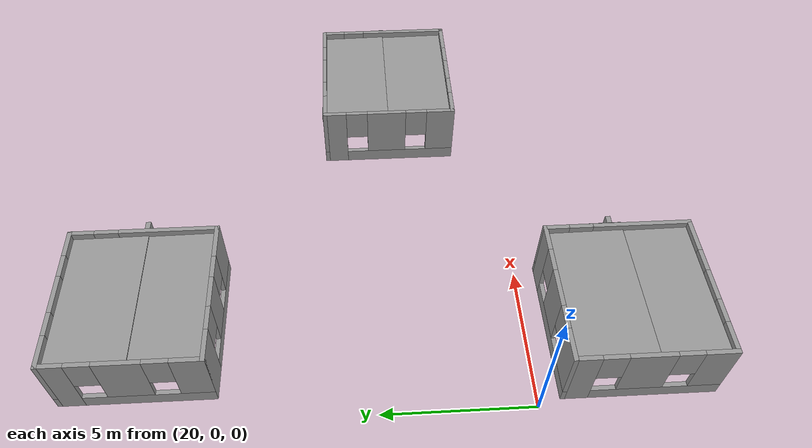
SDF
<sdf version="1.7">
 <world name="default">
  <model name="ground_plane">
   <static>1</static>
   <link name="link">
    <collision name="collision">
     <geometry><plane><normal>0 0 1</normal><size>5000 5000</size></plane></geometry>
     <surface><friction><ode><mu>100</mu><mu2>50</mu2></ode></friction></surface>
    </collision>
   </link>
  </model>
  <model name="5m">
   <pose>22.9189 -0.931863 2.17512 1.55349 -0 0</pose>
   <link name="Wall_0">
    <collision name="Wall_0_Collision">
     <geometry><box><size>5 0.15 2.5</size></box></geometry>
     <pose>0 0 1.25 0 -0 0</pose>
    </collision>
    <visual name="Wall_0_Visual">
     <pose>0 0 1.25 0 -0 0</pose>
     <geometry><box><size>5 0.15 2.5</size></box></geometry>
     <material>
      <script><uri>file://media/materials/scripts/gazebo.material</uri><name>Gazebo/Grey</name></script>
      <ambient>1 1 1 1</ambient>
     </material>
     <meta><layer>0</layer></meta>
    </visual>
   </link>
   <static>1</static>
  </model>
  <model name="House_0">
   <pose>23.3033 12.5521 0 0 -0 0</pose>
   <link name="Door_0">
    <collision name="Door_0_Collision">
     <geometry><box><size>0.9 0.17 2</size></box></geometry>
     <pose>0 0 1 0 -0 0</pose>
    </collision>
    <visual name="Door_0_Visual">
     <pose>0 0 1 0 -0 0</pose>
     <geometry><box><size>0.9 0.17 2</size></box></geometry>
     <material>
      <script><uri>file://media/materials/scripts/gazebo.material</uri><name>Gazebo/Grey</name></script>
     </material>
    </visual>
    <pose>2.72267 0.051323 0 0 -0 0</pose>
   </link>
   <link name="Wall_2">
    <pose>0 2.425 0 0 -0 3.14159</pose>
    <visual name="Wall_2_Visual_0">
     <pose>-2.01333 0 1.25 0 -0 0</pose>
     <geometry><box><size>0.973339 0.15 2.5</size></box></geometry>
     <material>
      <script><uri>file://media/materials/scripts/gazebo.material</uri><name>Gazebo/Grey</name></script>
      <ambient>1 1 1 1</ambient>
     </material>
     <meta><layer>0</layer></meta>
    </visual>
    <collision name="Wall_2_Collision_0">
     <geometry><box><size>0.973339 0.15 2.5</size></box></geometry>
     <pose>-2.01333 0 1.25 0 -0 0</pose>
    </collision>
    <visual name="Wall_2_Visual_1">
     <pose>0.48667 0 0.25 0 -0 0</pose>
     <geometry><box><size>4.02666 0.15 0.5</size></box></geometry>
     <material>
      <script><uri>file://media/materials/scripts/gazebo.material</uri><name>Gazebo/Grey</name></script>
      <ambient>1 1 1 1</ambient>
     </material>
     <meta><layer>0</layer></meta>
    </visual>
    <collision name="Wall_2_Collision_1">
     <geometry><box><size>4.02666 0.15 0.5</size></box></geometry>
     <pose>0.48667 0 0.25 0 -0 0</pose>
    </collision>
    <visual name="Wall_2_Visual_2">
     <pose>-0.062653 0 1.5 0 -0 0</pose>
     <geometry><box><size>1.32802 0.15 2</size></box></geometry>
     <material>
      <script><uri>file://media/materials/scripts/gazebo.material</uri><name>Gazebo/Grey</name></script>
      <ambient>1 1 1 1</ambient>
     </material>
     <meta><layer>0</layer></meta>
    </visual>
    <collision name="Wall_2_Collision_2">
     <geometry><box><size>1.32802 0.15 2</size></box></geometry>
     <pose>-0.062653 0 1.5 0 -0 0</pose>
    </collision>
    <visual name="Wall_2_Visual_3">
     <pose>1.95068 0 1.5 0 -0 0</pose>
     <geometry><box><size>1.09865 0.15 2</size></box></geometry>
     <material>
      <script><uri>file://media/materials/scripts/gazebo.material</uri><name>Gazebo/Grey</name></script>
      <ambient>1 1 1 1</ambient>
     </material>
     <meta><layer>0</layer></meta>
    </visual>
    <collision name="Wall_2_Collision_3">
     <geometry><box><size>1.09865 0.15 2</size></box></geometry>
     <pose>1.95068 0 1.5 0 -0 0</pose>
    </collision>
    <visual name="Wall_2_Visual_4">
     <pose>-1.12666 0 1.9 0 -0 0</pose>
     <geometry><box><size>0.8 0.15 1.2</size></box></geometry>
     <material>
      <script><uri>file://media/materials/scripts/gazebo.material</uri><name>Gazebo/Grey</name></script>
      <ambient>1 1 1 1</ambient>
     </material>
     <meta><layer>0</layer></meta>
    </visual>
    <collision name="Wall_2_Collision_4">
     <geometry><box><size>0.8 0.15 1.2</size></box></geometry>
     <pose>-1.12666 0 1.9 0 -0 0</pose>
    </collision>
    <visual name="Wall_2_Visual_5">
     <pose>1.00135 0 1.9 0 -0 0</pose>
     <geometry><box><size>0.8 0.15 1.2</size></box></geometry>
     <material>
      <script><uri>file://media/materials/scripts/gazebo.material</uri><name>Gazebo/Grey</name></script>
      <ambient>1 1 1 1</ambient>
     </material>
     <meta><layer>0</layer></meta>
    </visual>
    <collision name="Wall_2_Collision_5">
     <geometry><box><size>0.8 0.15 1.2</size></box></geometry>
     <pose>1.00135 0 1.9 0 -0 0</pose>
    </collision>
   </link>
   <link name="Wall_3">
    <pose>-2.425 0 0 0 -0 -1.5708</pose>
    <visual name="Wall_3_Visual_0">
     <pose>-2.06087 0 1.25 0 -0 0</pose>
     <geometry><box><size>0.878268 0.15 2.5</size></box></geometry>
     <material>
      <script><uri>file://media/materials/scripts/gazebo.material</uri><name>Gazebo/Grey</name></script>
      <ambient>1 1 1 1</ambient>
     </material>
     <meta><layer>0</layer></meta>
    </visual>
    <collision name="Wall_3_Collision_0">
     <geometry><box><size>0.878268 0.15 2.5</size></box></geometry>
     <pose>-2.06087 0 1.25 0 -0 0</pose>
    </collision>
    <visual name="Wall_3_Visual_1">
     <pose>0.439134 0 0.25 0 -0 0</pose>
     <geometry><box><size>4.12173 0.15 0.5</size></box></geometry>
     <material>
      <script><uri>file://media/materials/scripts/gazebo.material</uri><name>Gazebo/Grey</name></script>
      <ambient>1 1 1 1</ambient>
     </material>
     <meta><layer>0</layer></meta>
    </visual>
    <collision name="Wall_3_Collision_1">
     <geometry><box><size>4.12173 0.15 0.5</size></box></geometry>
     <pose>0.439134 0 0.25 0 -0 0</pose>
    </collision>
    <visual name="Wall_3_Visual_2">
     <pose>-0.091224 0 1.5 0 -0 0</pose>
     <geometry><box><size>1.46102 0.15 2</size></box></geometry>
     <material>
      <script><uri>file://media/materials/scripts/gazebo.material</uri><name>Gazebo/Grey</name></script>
      <ambient>1 1 1 1</ambient>
     </material>
     <meta><layer>0</layer></meta>
    </visual>
    <collision name="Wall_3_Collision_2">
     <geometry><box><size>1.46102 0.15 2</size></box></geometry>
     <pose>-0.091224 0 1.5 0 -0 0</pose>
    </collision>
    <visual name="Wall_3_Visual_3">
     <pose>1.96964 0 1.5 0 -0 0</pose>
     <geometry><box><size>1.06072 0.15 2</size></box></geometry>
     <material>
      <script><uri>file://media/materials/scripts/gazebo.material</uri><name>Gazebo/Grey</name></script>
      <ambient>1 1 1 1</ambient>
     </material>
     <meta><layer>0</layer></meta>
    </visual>
    <collision name="Wall_3_Collision_3">
     <geometry><box><size>1.06072 0.15 2</size></box></geometry>
     <pose>1.96964 0 1.5 0 -0 0</pose>
    </collision>
    <visual name="Wall_3_Visual_4">
     <pose>-1.22173 0 1.9 0 -0 0</pose>
     <geometry><box><size>0.8 0.15 1.2</size></box></geometry>
     <material>
      <script><uri>file://media/materials/scripts/gazebo.material</uri><name>Gazebo/Grey</name></script>
      <ambient>1 1 1 1</ambient>
     </material>
     <meta><layer>0</layer></meta>
    </visual>
    <collision name="Wall_3_Collision_4">
     <geometry><box><size>0.8 0.15 1.2</size></box></geometry>
     <pose>-1.22173 0 1.9 0 -0 0</pose>
    </collision>
    <visual name="Wall_3_Visual_5">
     <pose>1.03929 0 1.9 0 -0 0</pose>
     <geometry><box><size>0.8 0.15 1.2</size></box></geometry>
     <material>
      <script><uri>file://media/materials/scripts/gazebo.material</uri><name>Gazebo/Grey</name></script>
      <ambient>1 1 1 1</ambient>
     </material>
     <meta><layer>0</layer></meta>
    </visual>
    <collision name="Wall_3_Collision_5">
     <geometry><box><size>0.8 0.15 1.2</size></box></geometry>
     <pose>1.03929 0 1.9 0 -0 0</pose>
    </collision>
   </link>
   <link name="Wall_4">
    <pose>0 -2.425 0 0 -0 0</pose>
    <visual name="Wall_4_Visual_0">
     <pose>-1.96398 0 1.25 0 -0 0</pose>
     <geometry><box><size>1.07204 0.15 2.5</size></box></geometry>
     <material>
      <script><uri>file://media/materials/scripts/gazebo.material</uri><name>Gazebo/Grey</name></script>
      <ambient>1 1 1 1</ambient>
     </material>
     <meta><layer>0</layer></meta>
    </visual>
    <collision name="Wall_4_Collision_0">
     <geometry><box><size>1.07204 0.15 2.5</size></box></geometry>
     <pose>-1.96398 0 1.25 0 -0 0</pose>
    </collision>
    <visual name="Wall_4_Visual_1">
     <pose>0.536022 0 0.25 0 -0 0</pose>
     <geometry><box><size>3.92796 0.15 0.5</size></box></geometry>
     <material>
      <script><uri>file://media/materials/scripts/gazebo.material</uri><name>Gazebo/Grey</name></script>
      <ambient>1 1 1 1</ambient>
     </material>
     <meta><layer>0</layer></meta>
    </visual>
    <collision name="Wall_4_Collision_1">
     <geometry><box><size>3.92796 0.15 0.5</size></box></geometry>
     <pose>0.536022 0 0.25 0 -0 0</pose>
    </collision>
    <visual name="Wall_4_Visual_2">
     <pose>-0.083648 0 1.5 0 -0 0</pose>
     <geometry><box><size>1.08861 0.15 2</size></box></geometry>
     <material>
      <script><uri>file://media/materials/scripts/gazebo.material</uri><name>Gazebo/Grey</name></script>
      <ambient>1 1 1 1</ambient>
     </material>
     <meta><layer>0</layer></meta>
    </visual>
    <collision name="Wall_4_Collision_2">
     <geometry><box><size>1.08861 0.15 2</size></box></geometry>
     <pose>-0.083648 0 1.5 0 -0 0</pose>
    </collision>
    <visual name="Wall_4_Visual_3">
     <pose>1.88033 0 1.5 0 -0 0</pose>
     <geometry><box><size>1.23934 0.15 2</size></box></geometry>
     <material>
      <script><uri>file://media/materials/scripts/gazebo.material</uri><name>Gazebo/Grey</name></script>
      <ambient>1 1 1 1</ambient>
     </material>
     <meta><layer>0</layer></meta>
    </visual>
    <collision name="Wall_4_Collision_3">
     <geometry><box><size>1.23934 0.15 2</size></box></geometry>
     <pose>1.88033 0 1.5 0 -0 0</pose>
    </collision>
    <visual name="Wall_4_Visual_4">
     <pose>-1.02796 0 1.9 0 -0 0</pose>
     <geometry><box><size>0.8 0.15 1.2</size></box></geometry>
     <material>
      <script><uri>file://media/materials/scripts/gazebo.material</uri><name>Gazebo/Grey</name></script>
      <ambient>1 1 1 1</ambient>
     </material>
     <meta><layer>0</layer></meta>
    </visual>
    <collision name="Wall_4_Collision_4">
     <geometry><box><size>0.8 0.15 1.2</size></box></geometry>
     <pose>-1.02796 0 1.9 0 -0 0</pose>
    </collision>
    <visual name="Wall_4_Visual_5">
     <pose>0.860659 0 1.9 0 -0 0</pose>
     <geometry><box><size>0.8 0.15 1.2</size></box></geometry>
     <material>
      <script><uri>file://media/materials/scripts/gazebo.material</uri><name>Gazebo/Grey</name></script>
      <ambient>1 1 1 1</ambient>
     </material>
     <meta><layer>0</layer></meta>
    </visual>
    <collision name="Wall_4_Collision_5">
     <geometry><box><size>0.8 0.15 1.2</size></box></geometry>
     <pose>0.860659 0 1.9 0 -0 0</pose>
    </collision>
   </link>
   <link name="Wall_5">
    <pose>2.425 0 0 0 -0 1.5708</pose>
    <visual name="Wall_5_Visual_0">
     <pose>-0.839134 0 1.25 0 -0 0</pose>
     <geometry><box><size>3.32173 0.15 2.5</size></box></geometry>
     <material>
      <script><uri>file://media/materials/scripts/gazebo.material</uri><name>Gazebo/Grey</name></script>
      <ambient>1 1 1 1</ambient>
     </material>
     <meta><layer>0</layer></meta>
    </visual>
    <collision name="Wall_5_Collision_0">
     <geometry><box><size>3.32173 0.15 2.5</size></box></geometry>
     <pose>-0.839134 0 1.25 0 -0 0</pose>
    </collision>
    <visual name="Wall_5_Visual_1">
     <pose>1.66087 0 0.25 0 -0 0</pose>
     <geometry><box><size>1.67827 0.15 0.5</size></box></geometry>
     <material>
      <script><uri>file://media/materials/scripts/gazebo.material</uri><name>Gazebo/Grey</name></script>
      <ambient>1 1 1 1</ambient>
     </material>
     <meta><layer>0</layer></meta>
    </visual>
    <collision name="Wall_5_Collision_1">
     <geometry><box><size>1.67827 0.15 0.5</size></box></geometry>
     <pose>1.66087 0 0.25 0 -0 0</pose>
    </collision>
    <visual name="Wall_5_Visual_2">
     <pose>2.06087 0 1.5 0 -0 0</pose>
     <geometry><box><size>0.878268 0.15 2</size></box></geometry>
     <material>
      <script><uri>file://media/materials/scripts/gazebo.material</uri><name>Gazebo/Grey</name></script>
      <ambient>1 1 1 1</ambient>
     </material>
     <meta><layer>0</layer></meta>
    </visual>
    <collision name="Wall_5_Collision_2">
     <geometry><box><size>0.878268 0.15 2</size></box></geometry>
     <pose>2.06087 0 1.5 0 -0 0</pose>
    </collision>
    <visual name="Wall_5_Visual_3">
     <pose>1.22173 0 1.9 0 -0 0</pose>
     <geometry><box><size>0.8 0.15 1.2</size></box></geometry>
     <material>
      <script><uri>file://media/materials/scripts/gazebo.material</uri><name>Gazebo/Grey</name></script>
      <ambient>1 1 1 1</ambient>
     </material>
     <meta><layer>0</layer></meta>
    </visual>
    <collision name="Wall_5_Collision_3">
     <geometry><box><size>0.8 0.15 1.2</size></box></geometry>
     <pose>1.22173 0 1.9 0 -0 0</pose>
    </collision>
   </link>
   <static>1</static>
  </model>
  <model name="House_2">
   <pose>22.7443 -3.22625 0 0 -0 0</pose>
   <link name="Door_0">
    <collision name="Door_0_Collision">
     <geometry><box><size>0.9 0.17 2</size></box></geometry>
     <pose>0 0 1 0 -0 0</pose>
    </collision>
    <visual name="Door_0_Visual">
     <pose>0 0 1 0 -0 0</pose>
     <geometry><box><size>0.9 0.17 2</size></box></geometry>
     <material>
      <script><uri>file://media/materials/scripts/gazebo.material</uri><name>Gazebo/Grey</name></script>
     </material>
    </visual>
    <pose>2.72267 0.051323 0 0 -0 0</pose>
   </link>
   <link name="Wall_2">
    <pose>0 2.425 0 0 -0 3.14159</pose>
    <visual name="Wall_2_Visual_0">
     <pose>-2.01333 0 1.25 0 -0 0</pose>
     <geometry><box><size>0.973339 0.15 2.5</size></box></geometry>
     <material>
      <script><uri>file://media/materials/scripts/gazebo.material</uri><name>Gazebo/Grey</name></script>
      <ambient>1 1 1 1</ambient>
     </material>
     <meta><layer>0</layer></meta>
    </visual>
    <collision name="Wall_2_Collision_0">
     <geometry><box><size>0.973339 0.15 2.5</size></box></geometry>
     <pose>-2.01333 0 1.25 0 -0 0</pose>
    </collision>
    <visual name="Wall_2_Visual_1">
     <pose>0.48667 0 0.25 0 -0 0</pose>
     <geometry><box><size>4.02666 0.15 0.5</size></box></geometry>
     <material>
      <script><uri>file://media/materials/scripts/gazebo.material</uri><name>Gazebo/Grey</name></script>
      <ambient>1 1 1 1</ambient>
     </material>
     <meta><layer>0</layer></meta>
    </visual>
    <collision name="Wall_2_Collision_1">
     <geometry><box><size>4.02666 0.15 0.5</size></box></geometry>
     <pose>0.48667 0 0.25 0 -0 0</pose>
    </collision>
    <visual name="Wall_2_Visual_2">
     <pose>-0.062653 0 1.5 0 -0 0</pose>
     <geometry><box><size>1.32802 0.15 2</size></box></geometry>
     <material>
      <script><uri>file://media/materials/scripts/gazebo.material</uri><name>Gazebo/Grey</name></script>
      <ambient>1 1 1 1</ambient>
     </material>
     <meta><layer>0</layer></meta>
    </visual>
    <collision name="Wall_2_Collision_2">
     <geometry><box><size>1.32802 0.15 2</size></box></geometry>
     <pose>-0.062653 0 1.5 0 -0 0</pose>
    </collision>
    <visual name="Wall_2_Visual_3">
     <pose>1.95068 0 1.5 0 -0 0</pose>
     <geometry><box><size>1.09865 0.15 2</size></box></geometry>
     <material>
      <script><uri>file://media/materials/scripts/gazebo.material</uri><name>Gazebo/Grey</name></script>
      <ambient>1 1 1 1</ambient>
     </material>
     <meta><layer>0</layer></meta>
    </visual>
    <collision name="Wall_2_Collision_3">
     <geometry><box><size>1.09865 0.15 2</size></box></geometry>
     <pose>1.95068 0 1.5 0 -0 0</pose>
    </collision>
    <visual name="Wall_2_Visual_4">
     <pose>-1.12666 0 1.9 0 -0 0</pose>
     <geometry><box><size>0.8 0.15 1.2</size></box></geometry>
     <material>
      <script><uri>file://media/materials/scripts/gazebo.material</uri><name>Gazebo/Grey</name></script>
      <ambient>1 1 1 1</ambient>
     </material>
     <meta><layer>0</layer></meta>
    </visual>
    <collision name="Wall_2_Collision_4">
     <geometry><box><size>0.8 0.15 1.2</size></box></geometry>
     <pose>-1.12666 0 1.9 0 -0 0</pose>
    </collision>
    <visual name="Wall_2_Visual_5">
     <pose>1.00135 0 1.9 0 -0 0</pose>
     <geometry><box><size>0.8 0.15 1.2</size></box></geometry>
     <material>
      <script><uri>file://media/materials/scripts/gazebo.material</uri><name>Gazebo/Grey</name></script>
      <ambient>1 1 1 1</ambient>
     </material>
     <meta><layer>0</layer></meta>
    </visual>
    <collision name="Wall_2_Collision_5">
     <geometry><box><size>0.8 0.15 1.2</size></box></geometry>
     <pose>1.00135 0 1.9 0 -0 0</pose>
    </collision>
   </link>
   <link name="Wall_3">
    <pose>-2.425 0 0 0 -0 -1.5708</pose>
    <visual name="Wall_3_Visual_0">
     <pose>-2.06087 0 1.25 0 -0 0</pose>
     <geometry><box><size>0.878268 0.15 2.5</size></box></geometry>
     <material>
      <script><uri>file://media/materials/scripts/gazebo.material</uri><name>Gazebo/Grey</name></script>
      <ambient>1 1 1 1</ambient>
     </material>
     <meta><layer>0</layer></meta>
    </visual>
    <collision name="Wall_3_Collision_0">
     <geometry><box><size>0.878268 0.15 2.5</size></box></geometry>
     <pose>-2.06087 0 1.25 0 -0 0</pose>
    </collision>
    <visual name="Wall_3_Visual_1">
     <pose>0.439134 0 0.25 0 -0 0</pose>
     <geometry><box><size>4.12173 0.15 0.5</size></box></geometry>
     <material>
      <script><uri>file://media/materials/scripts/gazebo.material</uri><name>Gazebo/Grey</name></script>
      <ambient>1 1 1 1</ambient>
     </material>
     <meta><layer>0</layer></meta>
    </visual>
    <collision name="Wall_3_Collision_1">
     <geometry><box><size>4.12173 0.15 0.5</size></box></geometry>
     <pose>0.439134 0 0.25 0 -0 0</pose>
    </collision>
    <visual name="Wall_3_Visual_2">
     <pose>-0.091224 0 1.5 0 -0 0</pose>
     <geometry><box><size>1.46102 0.15 2</size></box></geometry>
     <material>
      <script><uri>file://media/materials/scripts/gazebo.material</uri><name>Gazebo/Grey</name></script>
      <ambient>1 1 1 1</ambient>
     </material>
     <meta><layer>0</layer></meta>
    </visual>
    <collision name="Wall_3_Collision_2">
     <geometry><box><size>1.46102 0.15 2</size></box></geometry>
     <pose>-0.091224 0 1.5 0 -0 0</pose>
    </collision>
    <visual name="Wall_3_Visual_3">
     <pose>1.96964 0 1.5 0 -0 0</pose>
     <geometry><box><size>1.06072 0.15 2</size></box></geometry>
     <material>
      <script><uri>file://media/materials/scripts/gazebo.material</uri><name>Gazebo/Grey</name></script>
      <ambient>1 1 1 1</ambient>
     </material>
     <meta><layer>0</layer></meta>
    </visual>
    <collision name="Wall_3_Collision_3">
     <geometry><box><size>1.06072 0.15 2</size></box></geometry>
     <pose>1.96964 0 1.5 0 -0 0</pose>
    </collision>
    <visual name="Wall_3_Visual_4">
     <pose>-1.22173 0 1.9 0 -0 0</pose>
     <geometry><box><size>0.8 0.15 1.2</size></box></geometry>
     <material>
      <script><uri>file://media/materials/scripts/gazebo.material</uri><name>Gazebo/Grey</name></script>
      <ambient>1 1 1 1</ambient>
     </material>
     <meta><layer>0</layer></meta>
    </visual>
    <collision name="Wall_3_Collision_4">
     <geometry><box><size>0.8 0.15 1.2</size></box></geometry>
     <pose>-1.22173 0 1.9 0 -0 0</pose>
    </collision>
    <visual name="Wall_3_Visual_5">
     <pose>1.03929 0 1.9 0 -0 0</pose>
     <geometry><box><size>0.8 0.15 1.2</size></box></geometry>
     <material>
      <script><uri>file://media/materials/scripts/gazebo.material</uri><name>Gazebo/Grey</name></script>
      <ambient>1 1 1 1</ambient>
     </material>
     <meta><layer>0</layer></meta>
    </visual>
    <collision name="Wall_3_Collision_5">
     <geometry><box><size>0.8 0.15 1.2</size></box></geometry>
     <pose>1.03929 0 1.9 0 -0 0</pose>
    </collision>
   </link>
   <link name="Wall_4">
    <pose>0 -2.425 0 0 -0 0</pose>
    <visual name="Wall_4_Visual_0">
     <pose>-1.96398 0 1.25 0 -0 0</pose>
     <geometry><box><size>1.07204 0.15 2.5</size></box></geometry>
     <material>
      <script><uri>file://media/materials/scripts/gazebo.material</uri><name>Gazebo/Grey</name></script>
      <ambient>1 1 1 1</ambient>
     </material>
     <meta><layer>0</layer></meta>
    </visual>
    <collision name="Wall_4_Collision_0">
     <geometry><box><size>1.07204 0.15 2.5</size></box></geometry>
     <pose>-1.96398 0 1.25 0 -0 0</pose>
    </collision>
    <visual name="Wall_4_Visual_1">
     <pose>0.536022 0 0.25 0 -0 0</pose>
     <geometry><box><size>3.92796 0.15 0.5</size></box></geometry>
     <material>
      <script><uri>file://media/materials/scripts/gazebo.material</uri><name>Gazebo/Grey</name></script>
      <ambient>1 1 1 1</ambient>
     </material>
     <meta><layer>0</layer></meta>
    </visual>
    <collision name="Wall_4_Collision_1">
     <geometry><box><size>3.92796 0.15 0.5</size></box></geometry>
     <pose>0.536022 0 0.25 0 -0 0</pose>
    </collision>
    <visual name="Wall_4_Visual_2">
     <pose>-0.083648 0 1.5 0 -0 0</pose>
     <geometry><box><size>1.08861 0.15 2</size></box></geometry>
     <material>
      <script><uri>file://media/materials/scripts/gazebo.material</uri><name>Gazebo/Grey</name></script>
      <ambient>1 1 1 1</ambient>
     </material>
     <meta><layer>0</layer></meta>
    </visual>
    <collision name="Wall_4_Collision_2">
     <geometry><box><size>1.08861 0.15 2</size></box></geometry>
     <pose>-0.083648 0 1.5 0 -0 0</pose>
    </collision>
    <visual name="Wall_4_Visual_3">
     <pose>1.88033 0 1.5 0 -0 0</pose>
     <geometry><box><size>1.23934 0.15 2</size></box></geometry>
     <material>
      <script><uri>file://media/materials/scripts/gazebo.material</uri><name>Gazebo/Grey</name></script>
      <ambient>1 1 1 1</ambient>
     </material>
     <meta><layer>0</layer></meta>
    </visual>
    <collision name="Wall_4_Collision_3">
     <geometry><box><size>1.23934 0.15 2</size></box></geometry>
     <pose>1.88033 0 1.5 0 -0 0</pose>
    </collision>
    <visual name="Wall_4_Visual_4">
     <pose>-1.02796 0 1.9 0 -0 0</pose>
     <geometry><box><size>0.8 0.15 1.2</size></box></geometry>
     <material>
      <script><uri>file://media/materials/scripts/gazebo.material</uri><name>Gazebo/Grey</name></script>
      <ambient>1 1 1 1</ambient>
     </material>
     <meta><layer>0</layer></meta>
    </visual>
    <collision name="Wall_4_Collision_4">
     <geometry><box><size>0.8 0.15 1.2</size></box></geometry>
     <pose>-1.02796 0 1.9 0 -0 0</pose>
    </collision>
    <visual name="Wall_4_Visual_5">
     <pose>0.860659 0 1.9 0 -0 0</pose>
     <geometry><box><size>0.8 0.15 1.2</size></box></geometry>
     <material>
      <script><uri>file://media/materials/scripts/gazebo.material</uri><name>Gazebo/Grey</name></script>
      <ambient>1 1 1 1</ambient>
     </material>
     <meta><layer>0</layer></meta>
    </visual>
    <collision name="Wall_4_Collision_5">
     <geometry><box><size>0.8 0.15 1.2</size></box></geometry>
     <pose>0.860659 0 1.9 0 -0 0</pose>
    </collision>
   </link>
   <link name="Wall_5">
    <pose>2.425 0 0 0 -0 1.5708</pose>
    <visual name="Wall_5_Visual_0">
     <pose>-0.839134 0 1.25 0 -0 0</pose>
     <geometry><box><size>3.32173 0.15 2.5</size></box></geometry>
     <material>
      <script><uri>file://media/materials/scripts/gazebo.material</uri><name>Gazebo/Grey</name></script>
      <ambient>1 1 1 1</ambient>
     </material>
     <meta><layer>0</layer></meta>
    </visual>
    <collision name="Wall_5_Collision_0">
     <geometry><box><size>3.32173 0.15 2.5</size></box></geometry>
     <pose>-0.839134 0 1.25 0 -0 0</pose>
    </collision>
    <visual name="Wall_5_Visual_1">
     <pose>1.66087 0 0.25 0 -0 0</pose>
     <geometry><box><size>1.67827 0.15 0.5</size></box></geometry>
     <material>
      <script><uri>file://media/materials/scripts/gazebo.material</uri><name>Gazebo/Grey</name></script>
      <ambient>1 1 1 1</ambient>
     </material>
     <meta><layer>0</layer></meta>
    </visual>
    <collision name="Wall_5_Collision_1">
     <geometry><box><size>1.67827 0.15 0.5</size></box></geometry>
     <pose>1.66087 0 0.25 0 -0 0</pose>
    </collision>
    <visual name="Wall_5_Visual_2">
     <pose>2.06087 0 1.5 0 -0 0</pose>
     <geometry><box><size>0.878268 0.15 2</size></box></geometry>
     <material>
      <script><uri>file://media/materials/scripts/gazebo.material</uri><name>Gazebo/Grey</name></script>
      <ambient>1 1 1 1</ambient>
     </material>
     <meta><layer>0</layer></meta>
    </visual>
    <collision name="Wall_5_Collision_2">
     <geometry><box><size>0.878268 0.15 2</size></box></geometry>
     <pose>2.06087 0 1.5 0 -0 0</pose>
    </collision>
    <visual name="Wall_5_Visual_3">
     <pose>1.22173 0 1.9 0 -0 0</pose>
     <geometry><box><size>0.8 0.15 1.2</size></box></geometry>
     <material>
      <script><uri>file://media/materials/scripts/gazebo.material</uri><name>Gazebo/Grey</name></script>
      <ambient>1 1 1 1</ambient>
     </material>
     <meta><layer>0</layer></meta>
    </visual>
    <collision name="Wall_5_Collision_3">
     <geometry><box><size>0.8 0.15 1.2</size></box></geometry>
     <pose>1.22173 0 1.9 0 -0 0</pose>
    </collision>
   </link>
   <static>1</static>
  </model>
  <model name="House_3">
   <pose>33.3699 4.11551 0 0 -0 0</pose>
   <link name="Door_0">
    <collision name="Door_0_Collision">
     <geometry><box><size>0.9 0.17 2</size></box></geometry>
     <pose>0 0 1 0 -0 0</pose>
    </collision>
    <visual name="Door_0_Visual">
     <pose>0 0 1 0 -0 0</pose>
     <geometry><box><size>0.9 0.17 2</size></box></geometry>
     <material>
      <script><uri>file://media/materials/scripts/gazebo.material</uri><name>Gazebo/Grey</name></script>
     </material>
    </visual>
    <pose>2.72267 0.051323 0 0 -0 0</pose>
   </link>
   <link name="Wall_2">
    <pose>0 2.425 0 0 -0 3.14159</pose>
    <visual name="Wall_2_Visual_0">
     <pose>-2.01333 0 1.25 0 -0 0</pose>
     <geometry><box><size>0.973339 0.15 2.5</size></box></geometry>
     <material>
      <script><uri>file://media/materials/scripts/gazebo.material</uri><name>Gazebo/Grey</name></script>
      <ambient>1 1 1 1</ambient>
     </material>
     <meta><layer>0</layer></meta>
    </visual>
    <collision name="Wall_2_Collision_0">
     <geometry><box><size>0.973339 0.15 2.5</size></box></geometry>
     <pose>-2.01333 0 1.25 0 -0 0</pose>
    </collision>
    <visual name="Wall_2_Visual_1">
     <pose>0.48667 0 0.25 0 -0 0</pose>
     <geometry><box><size>4.02666 0.15 0.5</size></box></geometry>
     <material>
      <script><uri>file://media/materials/scripts/gazebo.material</uri><name>Gazebo/Grey</name></script>
      <ambient>1 1 1 1</ambient>
     </material>
     <meta><layer>0</layer></meta>
    </visual>
    <collision name="Wall_2_Collision_1">
     <geometry><box><size>4.02666 0.15 0.5</size></box></geometry>
     <pose>0.48667 0 0.25 0 -0 0</pose>
    </collision>
    <visual name="Wall_2_Visual_2">
     <pose>-0.062653 0 1.5 0 -0 0</pose>
     <geometry><box><size>1.32802 0.15 2</size></box></geometry>
     <material>
      <script><uri>file://media/materials/scripts/gazebo.material</uri><name>Gazebo/Grey</name></script>
      <ambient>1 1 1 1</ambient>
     </material>
     <meta><layer>0</layer></meta>
    </visual>
    <collision name="Wall_2_Collision_2">
     <geometry><box><size>1.32802 0.15 2</size></box></geometry>
     <pose>-0.062653 0 1.5 0 -0 0</pose>
    </collision>
    <visual name="Wall_2_Visual_3">
     <pose>1.95068 0 1.5 0 -0 0</pose>
     <geometry><box><size>1.09865 0.15 2</size></box></geometry>
     <material>
      <script><uri>file://media/materials/scripts/gazebo.material</uri><name>Gazebo/Grey</name></script>
      <ambient>1 1 1 1</ambient>
     </material>
     <meta><layer>0</layer></meta>
    </visual>
    <collision name="Wall_2_Collision_3">
     <geometry><box><size>1.09865 0.15 2</size></box></geometry>
     <pose>1.95068 0 1.5 0 -0 0</pose>
    </collision>
    <visual name="Wall_2_Visual_4">
     <pose>-1.12666 0 1.9 0 -0 0</pose>
     <geometry><box><size>0.8 0.15 1.2</size></box></geometry>
     <material>
      <script><uri>file://media/materials/scripts/gazebo.material</uri><name>Gazebo/Grey</name></script>
      <ambient>1 1 1 1</ambient>
     </material>
     <meta><layer>0</layer></meta>
    </visual>
    <collision name="Wall_2_Collision_4">
     <geometry><box><size>0.8 0.15 1.2</size></box></geometry>
     <pose>-1.12666 0 1.9 0 -0 0</pose>
    </collision>
    <visual name="Wall_2_Visual_5">
     <pose>1.00135 0 1.9 0 -0 0</pose>
     <geometry><box><size>0.8 0.15 1.2</size></box></geometry>
     <material>
      <script><uri>file://media/materials/scripts/gazebo.material</uri><name>Gazebo/Grey</name></script>
      <ambient>1 1 1 1</ambient>
     </material>
     <meta><layer>0</layer></meta>
    </visual>
    <collision name="Wall_2_Collision_5">
     <geometry><box><size>0.8 0.15 1.2</size></box></geometry>
     <pose>1.00135 0 1.9 0 -0 0</pose>
    </collision>
   </link>
   <link name="Wall_3">
    <pose>-2.425 0 0 0 -0 -1.5708</pose>
    <visual name="Wall_3_Visual_0">
     <pose>-2.06087 0 1.25 0 -0 0</pose>
     <geometry><box><size>0.878268 0.15 2.5</size></box></geometry>
     <material>
      <script><uri>file://media/materials/scripts/gazebo.material</uri><name>Gazebo/Grey</name></script>
      <ambient>1 1 1 1</ambient>
     </material>
     <meta><layer>0</layer></meta>
    </visual>
    <collision name="Wall_3_Collision_0">
     <geometry><box><size>0.878268 0.15 2.5</size></box></geometry>
     <pose>-2.06087 0 1.25 0 -0 0</pose>
    </collision>
    <visual name="Wall_3_Visual_1">
     <pose>0.439134 0 0.25 0 -0 0</pose>
     <geometry><box><size>4.12173 0.15 0.5</size></box></geometry>
     <material>
      <script><uri>file://media/materials/scripts/gazebo.material</uri><name>Gazebo/Grey</name></script>
      <ambient>1 1 1 1</ambient>
     </material>
     <meta><layer>0</layer></meta>
    </visual>
    <collision name="Wall_3_Collision_1">
     <geometry><box><size>4.12173 0.15 0.5</size></box></geometry>
     <pose>0.439134 0 0.25 0 -0 0</pose>
    </collision>
    <visual name="Wall_3_Visual_2">
     <pose>-0.091224 0 1.5 0 -0 0</pose>
     <geometry><box><size>1.46102 0.15 2</size></box></geometry>
     <material>
      <script><uri>file://media/materials/scripts/gazebo.material</uri><name>Gazebo/Grey</name></script>
      <ambient>1 1 1 1</ambient>
     </material>
     <meta><layer>0</layer></meta>
    </visual>
    <collision name="Wall_3_Collision_2">
     <geometry><box><size>1.46102 0.15 2</size></box></geometry>
     <pose>-0.091224 0 1.5 0 -0 0</pose>
    </collision>
    <visual name="Wall_3_Visual_3">
     <pose>1.96964 0 1.5 0 -0 0</pose>
     <geometry><box><size>1.06072 0.15 2</size></box></geometry>
     <material>
      <script><uri>file://media/materials/scripts/gazebo.material</uri><name>Gazebo/Grey</name></script>
      <ambient>1 1 1 1</ambient>
     </material>
     <meta><layer>0</layer></meta>
    </visual>
    <collision name="Wall_3_Collision_3">
     <geometry><box><size>1.06072 0.15 2</size></box></geometry>
     <pose>1.96964 0 1.5 0 -0 0</pose>
    </collision>
    <visual name="Wall_3_Visual_4">
     <pose>-1.22173 0 1.9 0 -0 0</pose>
     <geometry><box><size>0.8 0.15 1.2</size></box></geometry>
     <material>
      <script><uri>file://media/materials/scripts/gazebo.material</uri><name>Gazebo/Grey</name></script>
      <ambient>1 1 1 1</ambient>
     </material>
     <meta><layer>0</layer></meta>
    </visual>
    <collision name="Wall_3_Collision_4">
     <geometry><box><size>0.8 0.15 1.2</size></box></geometry>
     <pose>-1.22173 0 1.9 0 -0 0</pose>
    </collision>
    <visual name="Wall_3_Visual_5">
     <pose>1.03929 0 1.9 0 -0 0</pose>
     <geometry><box><size>0.8 0.15 1.2</size></box></geometry>
     <material>
      <script><uri>file://media/materials/scripts/gazebo.material</uri><name>Gazebo/Grey</name></script>
      <ambient>1 1 1 1</ambient>
     </material>
     <meta><layer>0</layer></meta>
    </visual>
    <collision name="Wall_3_Collision_5">
     <geometry><box><size>0.8 0.15 1.2</size></box></geometry>
     <pose>1.03929 0 1.9 0 -0 0</pose>
    </collision>
   </link>
   <link name="Wall_4">
    <pose>0 -2.425 0 0 -0 0</pose>
    <visual name="Wall_4_Visual_0">
     <pose>-1.96398 0 1.25 0 -0 0</pose>
     <geometry><box><size>1.07204 0.15 2.5</size></box></geometry>
     <material>
      <script><uri>file://media/materials/scripts/gazebo.material</uri><name>Gazebo/Grey</name></script>
      <ambient>1 1 1 1</ambient>
     </material>
     <meta><layer>0</layer></meta>
    </visual>
    <collision name="Wall_4_Collision_0">
     <geometry><box><size>1.07204 0.15 2.5</size></box></geometry>
     <pose>-1.96398 0 1.25 0 -0 0</pose>
    </collision>
    <visual name="Wall_4_Visual_1">
     <pose>0.536022 0 0.25 0 -0 0</pose>
     <geometry><box><size>3.92796 0.15 0.5</size></box></geometry>
     <material>
      <script><uri>file://media/materials/scripts/gazebo.material</uri><name>Gazebo/Grey</name></script>
      <ambient>1 1 1 1</ambient>
     </material>
     <meta><layer>0</layer></meta>
    </visual>
    <collision name="Wall_4_Collision_1">
     <geometry><box><size>3.92796 0.15 0.5</size></box></geometry>
     <pose>0.536022 0 0.25 0 -0 0</pose>
    </collision>
    <visual name="Wall_4_Visual_2">
     <pose>-0.083648 0 1.5 0 -0 0</pose>
     <geometry><box><size>1.08861 0.15 2</size></box></geometry>
     <material>
      <script><uri>file://media/materials/scripts/gazebo.material</uri><name>Gazebo/Grey</name></script>
      <ambient>1 1 1 1</ambient>
     </material>
     <meta><layer>0</layer></meta>
    </visual>
    <collision name="Wall_4_Collision_2">
     <geometry><box><size>1.08861 0.15 2</size></box></geometry>
     <pose>-0.083648 0 1.5 0 -0 0</pose>
    </collision>
    <visual name="Wall_4_Visual_3">
     <pose>1.88033 0 1.5 0 -0 0</pose>
     <geometry><box><size>1.23934 0.15 2</size></box></geometry>
     <material>
      <script><uri>file://media/materials/scripts/gazebo.material</uri><name>Gazebo/Grey</name></script>
      <ambient>1 1 1 1</ambient>
     </material>
     <meta><layer>0</layer></meta>
    </visual>
    <collision name="Wall_4_Collision_3">
     <geometry><box><size>1.23934 0.15 2</size></box></geometry>
     <pose>1.88033 0 1.5 0 -0 0</pose>
    </collision>
    <visual name="Wall_4_Visual_4">
     <pose>-1.02796 0 1.9 0 -0 0</pose>
     <geometry><box><size>0.8 0.15 1.2</size></box></geometry>
     <material>
      <script><uri>file://media/materials/scripts/gazebo.material</uri><name>Gazebo/Grey</name></script>
      <ambient>1 1 1 1</ambient>
     </material>
     <meta><layer>0</layer></meta>
    </visual>
    <collision name="Wall_4_Collision_4">
     <geometry><box><size>0.8 0.15 1.2</size></box></geometry>
     <pose>-1.02796 0 1.9 0 -0 0</pose>
    </collision>
    <visual name="Wall_4_Visual_5">
     <pose>0.860659 0 1.9 0 -0 0</pose>
     <geometry><box><size>0.8 0.15 1.2</size></box></geometry>
     <material>
      <script><uri>file://media/materials/scripts/gazebo.material</uri><name>Gazebo/Grey</name></script>
      <ambient>1 1 1 1</ambient>
     </material>
     <meta><layer>0</layer></meta>
    </visual>
    <collision name="Wall_4_Collision_5">
     <geometry><box><size>0.8 0.15 1.2</size></box></geometry>
     <pose>0.860659 0 1.9 0 -0 0</pose>
    </collision>
   </link>
   <link name="Wall_5">
    <pose>2.425 0 0 0 -0 1.5708</pose>
    <visual name="Wall_5_Visual_0">
     <pose>-0.839134 0 1.25 0 -0 0</pose>
     <geometry><box><size>3.32173 0.15 2.5</size></box></geometry>
     <material>
      <script><uri>file://media/materials/scripts/gazebo.material</uri><name>Gazebo/Grey</name></script>
      <ambient>1 1 1 1</ambient>
     </material>
     <meta><layer>0</layer></meta>
    </visual>
    <collision name="Wall_5_Collision_0">
     <geometry><box><size>3.32173 0.15 2.5</size></box></geometry>
     <pose>-0.839134 0 1.25 0 -0 0</pose>
    </collision>
    <visual name="Wall_5_Visual_1">
     <pose>1.66087 0 0.25 0 -0 0</pose>
     <geometry><box><size>1.67827 0.15 0.5</size></box></geometry>
     <material>
      <script><uri>file://media/materials/scripts/gazebo.material</uri><name>Gazebo/Grey</name></script>
      <ambient>1 1 1 1</ambient>
     </material>
     <meta><layer>0</layer></meta>
    </visual>
    <collision name="Wall_5_Collision_1">
     <geometry><box><size>1.67827 0.15 0.5</size></box></geometry>
     <pose>1.66087 0 0.25 0 -0 0</pose>
    </collision>
    <visual name="Wall_5_Visual_2">
     <pose>2.06087 0 1.5 0 -0 0</pose>
     <geometry><box><size>0.878268 0.15 2</size></box></geometry>
     <material>
      <script><uri>file://media/materials/scripts/gazebo.material</uri><name>Gazebo/Grey</name></script>
      <ambient>1 1 1 1</ambient>
     </material>
     <meta><layer>0</layer></meta>
    </visual>
    <collision name="Wall_5_Collision_2">
     <geometry><box><size>0.878268 0.15 2</size></box></geometry>
     <pose>2.06087 0 1.5 0 -0 0</pose>
    </collision>
    <visual name="Wall_5_Visual_3">
     <pose>1.22173 0 1.9 0 -0 0</pose>
     <geometry><box><size>0.8 0.15 1.2</size></box></geometry>
     <material>
      <script><uri>file://media/materials/scripts/gazebo.material</uri><name>Gazebo/Grey</name></script>
      <ambient>1 1 1 1</ambient>
     </material>
     <meta><layer>0</layer></meta>
    </visual>
    <collision name="Wall_5_Collision_3">
     <geometry><box><size>0.8 0.15 1.2</size></box></geometry>
     <pose>1.22173 0 1.9 0 -0 0</pose>
    </collision>
   </link>
   <static>1</static>
  </model>
  <model name="5m_clone_0">
   <pose>22.8553 -3.33078 2.17512 1.55349 -0 0</pose>
   <link name="Wall_0">
    <collision name="Wall_0_Collision">
     <geometry><box><size>5 0.15 2.5</size></box></geometry>
     <pose>0 0 1.25 0 -0 0</pose>
    </collision>
    <visual name="Wall_0_Visual">
     <pose>0 0 1.25 0 -0 0</pose>
     <geometry><box><size>5 0.15 2.5</size></box></geometry>
     <material>
      <script><uri>file://media/materials/scripts/gazebo.material</uri><name>Gazebo/Grey</name></script>
      <ambient>1 1 1 1</ambient>
     </material>
     <meta><layer>0</layer></meta>
    </visual>
   </link>
   <static>1</static>
  </model>
  <model name="5m_clone_1">
   <pose>33.4754 4.2553 2.17512 1.55349 -0 0</pose>
   <link name="Wall_0">
    <collision name="Wall_0_Collision">
     <geometry><box><size>5 0.15 2.5</size></box></geometry>
     <pose>0 0 1.25 0 -0 0</pose>
    </collision>
    <visual name="Wall_0_Visual">
     <pose>0 0 1.25 0 -0 0</pose>
     <geometry><box><size>5 0.15 2.5</size></box></geometry>
     <material>
      <script><uri>file://media/materials/scripts/gazebo.material</uri><name>Gazebo/Grey</name></script>
      <ambient>1 1 1 1</ambient>
     </material>
     <meta><layer>0</layer></meta>
    </visual>
   </link>
   <static>1</static>
  </model>
  <model name="5m_clone_2">
   <pose>33.4554 6.63522 2.17512 1.55349 -0 0</pose>
   <link name="Wall_0">
    <collision name="Wall_0_Collision">
     <geometry><box><size>5 0.15 2.5</size></box></geometry>
     <pose>0 0 1.25 0 -0 0</pose>
    </collision>
    <visual name="Wall_0_Visual">
     <pose>0 0 1.25 0 -0 0</pose>
     <geometry><box><size>5 0.15 2.5</size></box></geometry>
     <material>
      <script><uri>file://media/materials/scripts/gazebo.material</uri><name>Gazebo/Grey</name></script>
      <ambient>1 1 1 1</ambient>
     </material>
     <meta><layer>0</layer></meta>
    </visual>
   </link>
   <static>1</static>
  </model>
  <model name="5m_clone_3">
   <pose>23.4218 12.7144 2.17512 1.55349 -0 0</pose>
   <link name="Wall_0">
    <collision name="Wall_0_Collision">
     <geometry><box><size>5 0.15 2.5</size></box></geometry>
     <pose>0 0 1.25 0 -0 0</pose>
    </collision>
    <visual name="Wall_0_Visual">
     <pose>0 0 1.25 0 -0 0</pose>
     <geometry><box><size>5 0.15 2.5</size></box></geometry>
     <material>
      <script><uri>file://media/materials/scripts/gazebo.material</uri><name>Gazebo/Grey</name></script>
      <ambient>1 1 1 1</ambient>
     </material>
     <meta><layer>0</layer></meta>
    </visual>
   </link>
   <static>1</static>
  </model>
  <model name="5m_clone_4">
   <pose>23.4107 14.9003 2.17512 1.55349 -0 0</pose>
   <link name="Wall_0">
    <collision name="Wall_0_Collision">
     <geometry><box><size>5 0.15 2.5</size></box></geometry>
     <pose>0 0 1.25 0 -0 0</pose>
    </collision>
    <visual name="Wall_0_Visual">
     <pose>0 0 1.25 0 -0 0</pose>
     <geometry><box><size>5 0.15 2.5</size></box></geometry>
     <material>
      <script><uri>file://media/materials/scripts/gazebo.material</uri><name>Gazebo/Grey</name></script>
      <ambient>1 1 1 1</ambient>
     </material>
     <meta><layer>0</layer></meta>
    </visual>
   </link>
   <static>1</static>
  </model>
 </world>
</sdf>
